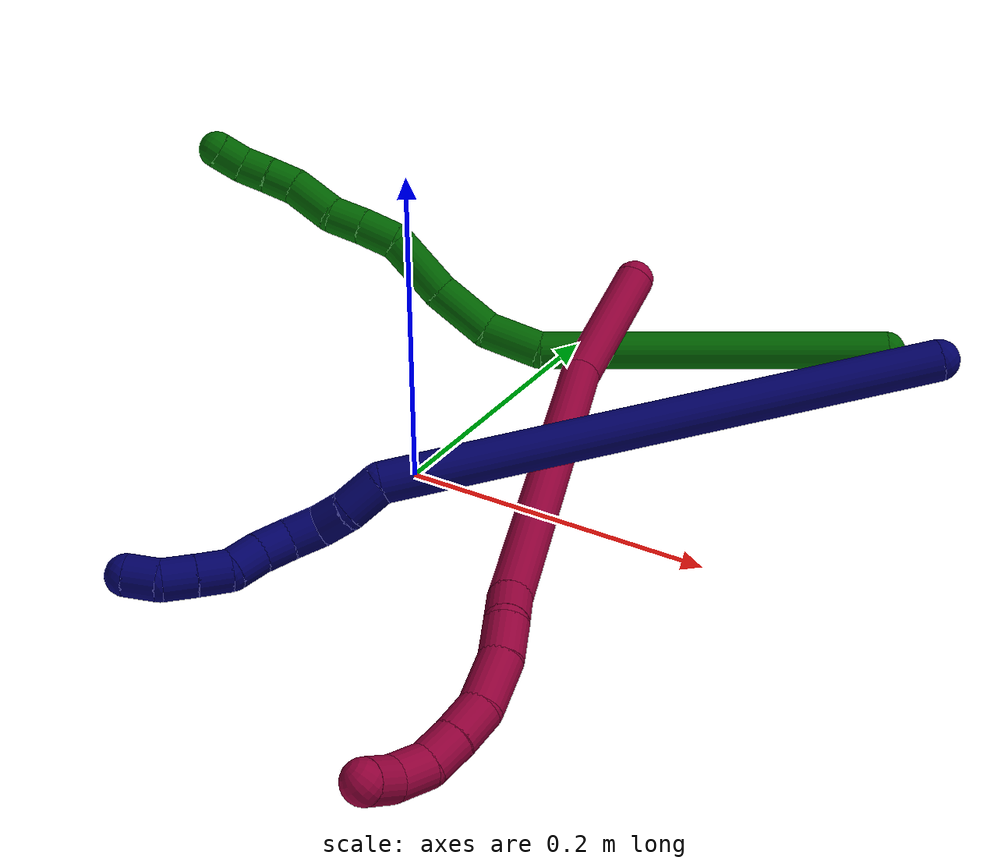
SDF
<sdf version="1.7">
 <world name="default">
  <model name="photoneo_s_sensor">
   <static>1</static>
   <pose>0 0 2 1.57079 1.57079 3.14159</pose>
   <link name="link">
    <inertial><mass>0.1</mass></inertial>
    <sensor name="sensor" type="depth">
     <update_rate>30</update_rate>
     <camera>
      <horizontal_fov>1.22</horizontal_fov>
      <image><width>1920</width><height>1200</height><format>B8G8R8</format></image>
      <clip><near>0.1</near><far>4</far></clip>
      <depth_camera><output>points</output></depth_camera>
     </camera>
     <plugin name="camera_plugin" filename="libgazebo_ros_depth_camera.so">
      <baseline>0.2</baseline>
      <alwaysOn>1</alwaysOn>
      <updateRate>0.0</updateRate>
      <cameraName>camera_ir</cameraName>
      <imageTopicName>/camera/color/image_raw</imageTopicName>
      <cameraInfoTopicName>/camera/color/camera_info</cameraInfoTopicName>
      <depthImageTopicName>/camera/depth/image_raw</depthImageTopicName>
      <depthImageCameraInfoTopicName>/camera/depth/camera_info</depthImageCameraInfoTopicName>
      <pointCloudTopicName>/camera/depth/points</pointCloudTopicName>
      <frameName>fr_optical</frameName>
      <pointCloudCutoff>0.1</pointCloudCutoff>
      <pointCloudCutoffMax>2.0</pointCloudCutoffMax>
      <distortionK1>0</distortionK1>
      <distortionK2>0</distortionK2>
      <distortionK3>0</distortionK3>
      <distortionT1>0</distortionT1>
      <distortionT2>0</distortionT2>
      <CxPrime>0</CxPrime>
      <Cx>0</Cx>
      <Cy>0</Cy>
      <focalLength>0</focalLength>
      <hackBaseline>0</hackBaseline>
     </plugin>
    </sensor>
   </link>
  </model>
  <model name="bin">
   <static>1</static>
   <link name="bottom">
    <collision name="collision-bottom">
     <pose>0 0 -0.01 0 -0 0</pose>
     <geometry><box><size>0.8 0.6 0.02</size></box></geometry>
     <surface>
      <friction><ode><mu>100</mu><mu2>100</mu2></ode></friction>
      <contact><collide_bitmask>65535</collide_bitmask></contact>
     </surface>
    </collision>
   </link>
   <link name="west_wall">
    <collision name="collision-west_wall">
     <pose>-0.41 0 0.1 0 -0 0</pose>
     <geometry><box><size>0.02 0.6 0.2</size></box></geometry>
     <surface>
      <friction><ode><mu>100</mu><mu2>100</mu2></ode></friction>
      <contact><collide_bitmask>65535</collide_bitmask></contact>
     </surface>
    </collision>
   </link>
   <link name="east_wall">
    <collision name="collision-east_wall">
     <pose>0.41 0 0.1 0 -0 0</pose>
     <geometry><box><size>0.02 0.6 0.2</size></box></geometry>
     <surface>
      <friction><ode><mu>100</mu><mu2>100</mu2></ode></friction>
      <contact><collide_bitmask>65535</collide_bitmask></contact>
     </surface>
    </collision>
   </link>
   <link name="south_wall">
    <collision name="collision-south_wall">
     <pose>0 -0.31 0.1 0 -0 0</pose>
     <geometry><box><size>0.8 0.02 0.2</size></box></geometry>
     <surface>
      <friction><ode><mu>100</mu><mu2>100</mu2></ode></friction>
      <contact><collide_bitmask>65535</collide_bitmask></contact>
     </surface>
    </collision>
   </link>
   <link name="north_wall">
    <collision name="collision-north_wall">
     <pose>0 0.31 0.1 0 -0 0</pose>
     <geometry><box><size>0.8 0.02 0.2</size></box></geometry>
     <surface>
      <friction><ode><mu>100</mu><mu2>100</mu2></ode></friction>
      <contact><collide_bitmask>65535</collide_bitmask></contact>
     </surface>
    </collision>
   </link>
  </model>
  <model name="6">
   <static>0</static>
   <link name="6">
    <collision name="collision-cylinder-e_1_1_4">
     <pose>-0.074162 -0.061616 0.065487 0.754948 -0.68967 -0.282923</pose>
     <geometry><cylinder><radius>0.0125</radius><length>0.233109</length></cylinder></geometry>
     <surface>
      <friction><ode><mu>1.16</mu><mu2>1.16</mu2><slip1>0</slip1><slip2>0</slip2></ode></friction>
      <contact><ode><kp>1e+06</kp><kd>1</kd><max_vel>0</max_vel><min_depth>0.001</min_depth></ode></contact>
     </surface>
    </collision>
    <visual name="visual-cylinder-e_1_1_4">
     <pose>-0.074162 -0.061616 0.065487 0.754948 -0.68967 -0.282923</pose>
     <geometry><cylinder><radius>0.0125</radius><length>0.233109</length></cylinder></geometry>
     <material><ambient>0 0.392157 0.003922 1</ambient></material>
    </visual>
    <collision name="collision-cylinder-e_2_4_5">
     <pose>-0.161508 -0.137042 0.135008 1.28662 -0.741779 -0.567372</pose>
     <geometry><cylinder><radius>0.0125</radius><length>0.039031</length></cylinder></geometry>
     <surface>
      <friction><ode><mu>1.16</mu><mu2>1.16</mu2><slip1>0</slip1><slip2>0</slip2></ode></friction>
      <contact><ode><kp>1e+06</kp><kd>1</kd><max_vel>0</max_vel><min_depth>0.001</min_depth></ode></contact>
     </surface>
    </collision>
    <visual name="visual-cylinder-e_2_4_5">
     <pose>-0.161508 -0.137042 0.135008 1.28662 -0.741779 -0.567372</pose>
     <geometry><cylinder><radius>0.0125</radius><length>0.039031</length></cylinder></geometry>
     <material><ambient>0 0.392157 0.003922 1</ambient></material>
    </visual>
    <collision name="collision-cylinder-e_3_5_6">
     <pose>-0.190582 -0.164071 0.136982 1.72541 -0.871007 -0.995582</pose>
     <geometry><cylinder><radius>0.0125</radius><length>0.04154</length></cylinder></geometry>
     <surface>
      <friction><ode><mu>1.16</mu><mu2>1.16</mu2><slip1>0</slip1><slip2>0</slip2></ode></friction>
      <contact><ode><kp>1e+06</kp><kd>1</kd><max_vel>0</max_vel><min_depth>0.001</min_depth></ode></contact>
     </surface>
    </collision>
    <visual name="visual-cylinder-e_3_5_6">
     <pose>-0.190582 -0.164071 0.136982 1.72541 -0.871007 -0.995582</pose>
     <geometry><cylinder><radius>0.0125</radius><length>0.04154</length></cylinder></geometry>
     <material><ambient>0 0.392157 0.003922 1</ambient></material>
    </visual>
    <collision name="collision-cylinder-e_4_6_7">
     <pose>-0.225333 -0.188216 0.129623 2.02233 -0.998776 -1.43291</pose>
     <geometry><cylinder><radius>0.0125</radius><length>0.044867</length></cylinder></geometry>
     <surface>
      <friction><ode><mu>1.16</mu><mu2>1.16</mu2><slip1>0</slip1><slip2>0</slip2></ode></friction>
      <contact><ode><kp>1e+06</kp><kd>1</kd><max_vel>0</max_vel><min_depth>0.001</min_depth></ode></contact>
     </surface>
    </collision>
    <visual name="visual-cylinder-e_4_6_7">
     <pose>-0.225333 -0.188216 0.129623 2.02233 -0.998776 -1.43291</pose>
     <geometry><cylinder><radius>0.0125</radius><length>0.044867</length></cylinder></geometry>
     <material><ambient>0 0.392157 0.003922 1</ambient></material>
    </visual>
    <collision name="collision-cylinder-e_5_7_8">
     <pose>-0.253386 -0.207909 0.126266 1.35279 -0.797038 -0.65186</pose>
     <geometry><cylinder><radius>0.0125</radius><length>0.025699</length></cylinder></geometry>
     <surface>
      <friction><ode><mu>1.16</mu><mu2>1.16</mu2><slip1>0</slip1><slip2>0</slip2></ode></friction>
      <contact><ode><kp>1e+06</kp><kd>1</kd><max_vel>0</max_vel><min_depth>0.001</min_depth></ode></contact>
     </surface>
    </collision>
    <visual name="visual-cylinder-e_5_7_8">
     <pose>-0.253386 -0.207909 0.126266 1.35279 -0.797038 -0.65186</pose>
     <geometry><cylinder><radius>0.0125</radius><length>0.025699</length></cylinder></geometry>
     <material><ambient>0 0.392157 0.003922 1</ambient></material>
    </visual>
    <collision name="collision-cylinder-e_6_8_9">
     <pose>-0.270631 -0.224053 0.130586 1.2589 -0.804595 -0.600997</pose>
     <geometry><cylinder><radius>0.0125</radius><length>0.022356</length></cylinder></geometry>
     <surface>
      <friction><ode><mu>1.16</mu><mu2>1.16</mu2><slip1>0</slip1><slip2>0</slip2></ode></friction>
      <contact><ode><kp>1e+06</kp><kd>1</kd><max_vel>0</max_vel><min_depth>0.001</min_depth></ode></contact>
     </surface>
    </collision>
    <visual name="visual-cylinder-e_6_8_9">
     <pose>-0.270631 -0.224053 0.130586 1.2589 -0.804595 -0.600997</pose>
     <geometry><cylinder><radius>0.0125</radius><length>0.022356</length></cylinder></geometry>
     <material><ambient>0 0.392157 0.003922 1</ambient></material>
    </visual>
    <collision name="collision-cylinder-e_7_9_10">
     <pose>-0.289651 -0.243927 0.131627 1.67741 -0.717365 -0.790427</pose>
     <geometry><cylinder><radius>0.0125</radius><length>0.033359</length></cylinder></geometry>
     <surface>
      <friction><ode><mu>1.16</mu><mu2>1.16</mu2><slip1>0</slip1><slip2>0</slip2></ode></friction>
      <contact><ode><kp>1e+06</kp><kd>1</kd><max_vel>0</max_vel><min_depth>0.001</min_depth></ode></contact>
     </surface>
    </collision>
    <visual name="visual-cylinder-e_7_9_10">
     <pose>-0.289651 -0.243927 0.131627 1.67741 -0.717365 -0.790427</pose>
     <geometry><cylinder><radius>0.0125</radius><length>0.033359</length></cylinder></geometry>
     <material><ambient>0 0.392157 0.003922 1</ambient></material>
    </visual>
    <collision name="collision-cylinder-e_8_10_11">
     <pose>-0.30827 -0.262609 0.132175 1.27487 -0.869346 -0.662348</pose>
     <geometry><cylinder><radius>0.0125</radius><length>0.020038</length></cylinder></geometry>
     <surface>
      <friction><ode><mu>1.16</mu><mu2>1.16</mu2><slip1>0</slip1><slip2>0</slip2></ode></friction>
      <contact><ode><kp>1e+06</kp><kd>1</kd><max_vel>0</max_vel><min_depth>0.001</min_depth></ode></contact>
     </surface>
    </collision>
    <visual name="visual-cylinder-e_8_10_11">
     <pose>-0.30827 -0.262609 0.132175 1.27487 -0.869346 -0.662348</pose>
     <geometry><cylinder><radius>0.0125</radius><length>0.020038</length></cylinder></geometry>
     <material><ambient>0 0.392157 0.003922 1</ambient></material>
    </visual>
    <collision name="collision-cylinder-e_9_11_12">
     <pose>-0.323133 -0.275449 0.135991 1.2886 -0.805237 -0.619303</pose>
     <geometry><cylinder><radius>0.0125</radius><length>0.02</length></cylinder></geometry>
     <surface>
      <friction><ode><mu>1.16</mu><mu2>1.16</mu2><slip1>0</slip1><slip2>0</slip2></ode></friction>
      <contact><ode><kp>1e+06</kp><kd>1</kd><max_vel>0</max_vel><min_depth>0.001</min_depth></ode></contact>
     </surface>
    </collision>
    <visual name="visual-cylinder-e_9_11_12">
     <pose>-0.323133 -0.275449 0.135991 1.2886 -0.805237 -0.619303</pose>
     <geometry><cylinder><radius>0.0125</radius><length>0.02</length></cylinder></geometry>
     <material><ambient>0 0.392157 0.003922 1</ambient></material>
    </visual>
    <collision name="collision-cylinder-e_10_12_2">
     <pose>-0.339895 -0.284857 0.139007 1.19466 -1.27034 -0.92948</pose>
     <geometry><cylinder><radius>0.0125</radius><length>0.02</length></cylinder></geometry>
     <surface>
      <friction><ode><mu>1.16</mu><mu2>1.16</mu2><slip1>0</slip1><slip2>0</slip2></ode></friction>
      <contact><ode><kp>1e+06</kp><kd>1</kd><max_vel>0</max_vel><min_depth>0.001</min_depth></ode></contact>
     </surface>
    </collision>
    <visual name="visual-cylinder-e_10_12_2">
     <pose>-0.339895 -0.284857 0.139007 1.19466 -1.27034 -0.92948</pose>
     <geometry><cylinder><radius>0.0125</radius><length>0.02</length></cylinder></geometry>
     <material><ambient>0 0.392157 0.003922 1</ambient></material>
    </visual>
    <collision name="collision-sphere-2">
     <pose>-0.349447 -0.28761 0.140095 0 -0 0</pose>
     <geometry><sphere><radius>0.0125</radius></sphere></geometry>
     <surface>
      <friction><ode><mu>1.16</mu><mu2>1.16</mu2><slip1>0</slip1><slip2>0</slip2></ode></friction>
      <contact><ode><kp>1e+06</kp><kd>1</kd><max_vel>0</max_vel><min_depth>0.001</min_depth></ode></contact>
     </surface>
    </collision>
    <visual name="visual-sphere-2">
     <pose>-0.349447 -0.28761 0.140095 0 -0 0</pose>
     <geometry><sphere><radius>0.0125</radius></sphere></geometry>
     <material><ambient>0 0.392157 0.003922 1</ambient></material>
    </visual>
    <collision name="collision-sphere-12">
     <pose>-0.330343 -0.282105 0.13792 0 -0 0</pose>
     <geometry><sphere><radius>0.0125</radius></sphere></geometry>
     <surface>
      <friction><ode><mu>1.16</mu><mu2>1.16</mu2><slip1>0</slip1><slip2>0</slip2></ode></friction>
      <contact><ode><kp>1e+06</kp><kd>1</kd><max_vel>0</max_vel><min_depth>0.001</min_depth></ode></contact>
     </surface>
    </collision>
    <visual name="visual-sphere-12">
     <pose>-0.330343 -0.282105 0.13792 0 -0 0</pose>
     <geometry><sphere><radius>0.0125</radius></sphere></geometry>
     <material><ambient>0 0.392157 0.003922 1</ambient></material>
    </visual>
    <collision name="collision-sphere-11">
     <pose>-0.315923 -0.268794 0.134061 0 -0 0</pose>
     <geometry><sphere><radius>0.0125</radius></sphere></geometry>
     <surface>
      <friction><ode><mu>1.16</mu><mu2>1.16</mu2><slip1>0</slip1><slip2>0</slip2></ode></friction>
      <contact><ode><kp>1e+06</kp><kd>1</kd><max_vel>0</max_vel><min_depth>0.001</min_depth></ode></contact>
     </surface>
    </collision>
    <visual name="visual-sphere-11">
     <pose>-0.315923 -0.268794 0.134061 0 -0 0</pose>
     <geometry><sphere><radius>0.0125</radius></sphere></geometry>
     <material><ambient>0 0.392157 0.003922 1</ambient></material>
    </visual>
    <collision name="collision-sphere-10">
     <pose>-0.300616 -0.256425 0.13029 0 -0 0</pose>
     <geometry><sphere><radius>0.0125</radius></sphere></geometry>
     <surface>
      <friction><ode><mu>1.16</mu><mu2>1.16</mu2><slip1>0</slip1><slip2>0</slip2></ode></friction>
      <contact><ode><kp>1e+06</kp><kd>1</kd><max_vel>0</max_vel><min_depth>0.001</min_depth></ode></contact>
     </surface>
    </collision>
    <visual name="visual-sphere-10">
     <pose>-0.300616 -0.256425 0.13029 0 -0 0</pose>
     <geometry><sphere><radius>0.0125</radius></sphere></geometry>
     <material><ambient>0 0.392157 0.003922 1</ambient></material>
    </visual>
    <collision name="collision-sphere-9">
     <pose>-0.278686 -0.23143 0.132965 0 -0 0</pose>
     <geometry><sphere><radius>0.0125</radius></sphere></geometry>
     <surface>
      <friction><ode><mu>1.16</mu><mu2>1.16</mu2><slip1>0</slip1><slip2>0</slip2></ode></friction>
      <contact><ode><kp>1e+06</kp><kd>1</kd><max_vel>0</max_vel><min_depth>0.001</min_depth></ode></contact>
     </surface>
    </collision>
    <visual name="visual-sphere-9">
     <pose>-0.278686 -0.23143 0.132965 0 -0 0</pose>
     <geometry><sphere><radius>0.0125</radius></sphere></geometry>
     <material><ambient>0 0.392157 0.003922 1</ambient></material>
    </visual>
    <collision name="collision-sphere-4">
     <pose>-0.148323 -0.123231 0.130974 0 -0 0</pose>
     <geometry><sphere><radius>0.0125</radius></sphere></geometry>
     <surface>
      <friction><ode><mu>1.16</mu><mu2>1.16</mu2><slip1>0</slip1><slip2>0</slip2></ode></friction>
      <contact><ode><kp>1e+06</kp><kd>1</kd><max_vel>0</max_vel><min_depth>0.001</min_depth></ode></contact>
     </surface>
    </collision>
    <visual name="visual-sphere-4">
     <pose>-0.148323 -0.123231 0.130974 0 -0 0</pose>
     <geometry><sphere><radius>0.0125</radius></sphere></geometry>
     <material><ambient>0 0.392157 0.003922 1</ambient></material>
    </visual>
    <collision name="collision-sphere-1">
     <geometry><sphere><radius>0.0125</radius></sphere></geometry>
     <surface>
      <friction><ode><mu>1.16</mu><mu2>1.16</mu2><slip1>0</slip1><slip2>0</slip2></ode></friction>
      <contact><ode><kp>1e+06</kp><kd>1</kd><max_vel>0</max_vel><min_depth>0.001</min_depth></ode></contact>
     </surface>
    </collision>
    <visual name="visual-sphere-1">
     <geometry><sphere><radius>0.0125</radius></sphere></geometry>
     <material><ambient>0 0.392157 0.003922 1</ambient></material>
    </visual>
    <collision name="collision-sphere-8">
     <pose>-0.262577 -0.216677 0.128208 0 -0 0</pose>
     <geometry><sphere><radius>0.0125</radius></sphere></geometry>
     <surface>
      <friction><ode><mu>1.16</mu><mu2>1.16</mu2><slip1>0</slip1><slip2>0</slip2></ode></friction>
      <contact><ode><kp>1e+06</kp><kd>1</kd><max_vel>0</max_vel><min_depth>0.001</min_depth></ode></contact>
     </surface>
    </collision>
    <visual name="visual-sphere-8">
     <pose>-0.262577 -0.216677 0.128208 0 -0 0</pose>
     <geometry><sphere><radius>0.0125</radius></sphere></geometry>
     <material><ambient>0 0.392157 0.003922 1</ambient></material>
    </visual>
    <collision name="collision-sphere-5">
     <pose>-0.174693 -0.150853 0.139042 0 -0 0</pose>
     <geometry><sphere><radius>0.0125</radius></sphere></geometry>
     <surface>
      <friction><ode><mu>1.16</mu><mu2>1.16</mu2><slip1>0</slip1><slip2>0</slip2></ode></friction>
      <contact><ode><kp>1e+06</kp><kd>1</kd><max_vel>0</max_vel><min_depth>0.001</min_depth></ode></contact>
     </surface>
    </collision>
    <visual name="visual-sphere-5">
     <pose>-0.174693 -0.150853 0.139042 0 -0 0</pose>
     <geometry><sphere><radius>0.0125</radius></sphere></geometry>
     <material><ambient>0 0.392157 0.003922 1</ambient></material>
    </visual>
    <collision name="collision-sphere-6">
     <pose>-0.20647 -0.177289 0.134922 0 -0 0</pose>
     <geometry><sphere><radius>0.0125</radius></sphere></geometry>
     <surface>
      <friction><ode><mu>1.16</mu><mu2>1.16</mu2><slip1>0</slip1><slip2>0</slip2></ode></friction>
      <contact><ode><kp>1e+06</kp><kd>1</kd><max_vel>0</max_vel><min_depth>0.001</min_depth></ode></contact>
     </surface>
    </collision>
    <visual name="visual-sphere-6">
     <pose>-0.20647 -0.177289 0.134922 0 -0 0</pose>
     <geometry><sphere><radius>0.0125</radius></sphere></geometry>
     <material><ambient>0 0.392157 0.003922 1</ambient></material>
    </visual>
    <collision name="collision-sphere-7">
     <pose>-0.244195 -0.199142 0.124324 0 -0 0</pose>
     <geometry><sphere><radius>0.0125</radius></sphere></geometry>
     <surface>
      <friction><ode><mu>1.16</mu><mu2>1.16</mu2><slip1>0</slip1><slip2>0</slip2></ode></friction>
      <contact><ode><kp>1e+06</kp><kd>1</kd><max_vel>0</max_vel><min_depth>0.001</min_depth></ode></contact>
     </surface>
    </collision>
    <visual name="visual-sphere-7">
     <pose>-0.244195 -0.199142 0.124324 0 -0 0</pose>
     <geometry><sphere><radius>0.0125</radius></sphere></geometry>
     <material><ambient>0 0.392157 0.003922 1</ambient></material>
    </visual>
    <inertial>
     <pose>-0.166561 -0.13986 0.10149 0 -0 0</pose>
     <mass>0.5</mass>
     <inertia>
      <ixx>0.000529</ixx>
      <ixy>0</ixy>
      <ixz>0</ixz>
      <iyy>0.000627</iyy>
      <iyz>0</iyz>
      <izz>0.001301</izz>
     </inertia>
    </inertial>
   </link>
   <pose>0.194621 0.279767 0.012431 2.86132 0.82345 0.902166</pose>
  </model>
  <model name="7">
   <static>0</static>
   <link name="7">
    <collision name="collision-cylinder-e_1_1_4">
     <pose>0.053676 -0.086699 -0.132931 2.56366 0.326134 1.01095</pose>
     <geometry><cylinder><radius>0.0125</radius><length>0.335074</length></cylinder></geometry>
     <surface>
      <friction><ode><mu>1.16</mu><mu2>1.16</mu2><slip1>0</slip1><slip2>0</slip2></ode></friction>
      <contact><ode><kp>1e+06</kp><kd>1</kd><max_vel>0</max_vel><min_depth>0.001</min_depth></ode></contact>
     </surface>
    </collision>
    <visual name="visual-cylinder-e_1_1_4">
     <pose>0.053676 -0.086699 -0.132931 2.56366 0.326134 1.01095</pose>
     <geometry><cylinder><radius>0.0125</radius><length>0.335074</length></cylinder></geometry>
     <material><ambient>0.003922 0 0.403922 1</ambient></material>
    </visual>
    <collision name="collision-cylinder-e_2_4_5">
     <pose>0.105117 -0.180241 -0.275802 2.53873 -0.183198 -0.574547</pose>
     <geometry><cylinder><radius>0.0125</radius><length>0.024544</length></cylinder></geometry>
     <surface>
      <friction><ode><mu>1.16</mu><mu2>1.16</mu2><slip1>0</slip1><slip2>0</slip2></ode></friction>
      <contact><ode><kp>1e+06</kp><kd>1</kd><max_vel>0</max_vel><min_depth>0.001</min_depth></ode></contact>
     </surface>
    </collision>
    <visual name="visual-cylinder-e_2_4_5">
     <pose>0.105117 -0.180241 -0.275802 2.53873 -0.183198 -0.574547</pose>
     <geometry><cylinder><radius>0.0125</radius><length>0.024544</length></cylinder></geometry>
     <material><ambient>0.003922 0 0.403922 1</ambient></material>
    </visual>
    <collision name="collision-cylinder-e_3_5_6">
     <pose>0.101892 -0.195175 -0.291788 2.21243 -0.097587 -0.19426</pose>
     <geometry><cylinder><radius>0.0125</radius><length>0.020301</length></cylinder></geometry>
     <surface>
      <friction><ode><mu>1.16</mu><mu2>1.16</mu2><slip1>0</slip1><slip2>0</slip2></ode></friction>
      <contact><ode><kp>1e+06</kp><kd>1</kd><max_vel>0</max_vel><min_depth>0.001</min_depth></ode></contact>
     </surface>
    </collision>
    <visual name="visual-cylinder-e_3_5_6">
     <pose>0.101892 -0.195175 -0.291788 2.21243 -0.097587 -0.19426</pose>
     <geometry><cylinder><radius>0.0125</radius><length>0.020301</length></cylinder></geometry>
     <material><ambient>0.003922 0 0.403922 1</ambient></material>
    </visual>
    <collision name="collision-cylinder-e_4_6_7">
     <pose>0.102435 -0.208071 -0.306502 2.6356 0.153349 0.577688</pose>
     <geometry><cylinder><radius>0.0125</radius><length>0.020056</length></cylinder></geometry>
     <surface>
      <friction><ode><mu>1.16</mu><mu2>1.16</mu2><slip1>0</slip1><slip2>0</slip2></ode></friction>
      <contact><ode><kp>1e+06</kp><kd>1</kd><max_vel>0</max_vel><min_depth>0.001</min_depth></ode></contact>
     </surface>
    </collision>
    <visual name="visual-cylinder-e_4_6_7">
     <pose>0.102435 -0.208071 -0.306502 2.6356 0.153349 0.577688</pose>
     <geometry><cylinder><radius>0.0125</radius><length>0.020056</length></cylinder></geometry>
     <material><ambient>0.003922 0 0.403922 1</ambient></material>
    </visual>
    <collision name="collision-cylinder-e_5_7_8">
     <pose>0.10609 -0.214528 -0.324807 2.97167 0.213888 1.80027</pose>
     <geometry><cylinder><radius>0.0125</radius><length>0.02001</length></cylinder></geometry>
     <surface>
      <friction><ode><mu>1.16</mu><mu2>1.16</mu2><slip1>0</slip1><slip2>0</slip2></ode></friction>
      <contact><ode><kp>1e+06</kp><kd>1</kd><max_vel>0</max_vel><min_depth>0.001</min_depth></ode></contact>
     </surface>
    </collision>
    <visual name="visual-cylinder-e_5_7_8">
     <pose>0.10609 -0.214528 -0.324807 2.97167 0.213888 1.80027</pose>
     <geometry><cylinder><radius>0.0125</radius><length>0.02001</length></cylinder></geometry>
     <material><ambient>0.003922 0 0.403922 1</ambient></material>
    </visual>
    <collision name="collision-cylinder-e_6_8_9">
     <pose>0.109513 -0.216226 -0.344365 3.1371 0.1302 3.07269</pose>
     <geometry><cylinder><radius>0.0125</radius><length>0.020014</length></cylinder></geometry>
     <surface>
      <friction><ode><mu>1.16</mu><mu2>1.16</mu2><slip1>0</slip1><slip2>0</slip2></ode></friction>
      <contact><ode><kp>1e+06</kp><kd>1</kd><max_vel>0</max_vel><min_depth>0.001</min_depth></ode></contact>
     </surface>
    </collision>
    <visual name="visual-cylinder-e_6_8_9">
     <pose>0.109513 -0.216226 -0.344365 3.1371 0.1302 3.07269</pose>
     <geometry><cylinder><radius>0.0125</radius><length>0.020014</length></cylinder></geometry>
     <material><ambient>0.003922 0 0.403922 1</ambient></material>
    </visual>
    <collision name="collision-cylinder-e_7_9_10">
     <pose>0.115134 -0.219799 -0.362586 2.73956 0.446928 1.6797</pose>
     <geometry><cylinder><radius>0.0125</radius><length>0.02</length></cylinder></geometry>
     <surface>
      <friction><ode><mu>1.16</mu><mu2>1.16</mu2><slip1>0</slip1><slip2>0</slip2></ode></friction>
      <contact><ode><kp>1e+06</kp><kd>1</kd><max_vel>0</max_vel><min_depth>0.001</min_depth></ode></contact>
     </surface>
    </collision>
    <visual name="visual-cylinder-e_7_9_10">
     <pose>0.115134 -0.219799 -0.362586 2.73956 0.446928 1.6797</pose>
     <geometry><cylinder><radius>0.0125</radius><length>0.02</length></cylinder></geometry>
     <material><ambient>0.003922 0 0.403922 1</ambient></material>
    </visual>
    <collision name="collision-cylinder-e_8_10_11">
     <pose>0.123884 -0.227105 -0.379017 2.70673 0.45863 1.6258</pose>
     <geometry><cylinder><radius>0.0125</radius><length>0.020001</length></cylinder></geometry>
     <surface>
      <friction><ode><mu>1.16</mu><mu2>1.16</mu2><slip1>0</slip1><slip2>0</slip2></ode></friction>
      <contact><ode><kp>1e+06</kp><kd>1</kd><max_vel>0</max_vel><min_depth>0.001</min_depth></ode></contact>
     </surface>
    </collision>
    <visual name="visual-cylinder-e_8_10_11">
     <pose>0.123884 -0.227105 -0.379017 2.70673 0.45863 1.6258</pose>
     <geometry><cylinder><radius>0.0125</radius><length>0.020001</length></cylinder></geometry>
     <material><ambient>0.003922 0 0.403922 1</ambient></material>
    </visual>
    <collision name="collision-cylinder-e_9_11_2">
     <pose>0.133887 -0.237501 -0.392162 2.21901 0.591412 1.09968</pose>
     <geometry><cylinder><radius>0.0125</radius><length>0.020001</length></cylinder></geometry>
     <surface>
      <friction><ode><mu>1.16</mu><mu2>1.16</mu2><slip1>0</slip1><slip2>0</slip2></ode></friction>
      <contact><ode><kp>1e+06</kp><kd>1</kd><max_vel>0</max_vel><min_depth>0.001</min_depth></ode></contact>
     </surface>
    </collision>
    <visual name="visual-cylinder-e_9_11_2">
     <pose>0.133887 -0.237501 -0.392162 2.21901 0.591412 1.09968</pose>
     <geometry><cylinder><radius>0.0125</radius><length>0.020001</length></cylinder></geometry>
     <material><ambient>0.003922 0 0.403922 1</ambient></material>
    </visual>
    <collision name="collision-sphere-2">
     <pose>0.139462 -0.244119 -0.397175 0 -0 0</pose>
     <geometry><sphere><radius>0.0125</radius></sphere></geometry>
     <surface>
      <friction><ode><mu>1.16</mu><mu2>1.16</mu2><slip1>0</slip1><slip2>0</slip2></ode></friction>
      <contact><ode><kp>1e+06</kp><kd>1</kd><max_vel>0</max_vel><min_depth>0.001</min_depth></ode></contact>
     </surface>
    </collision>
    <visual name="visual-sphere-2">
     <pose>0.139462 -0.244119 -0.397175 0 -0 0</pose>
     <geometry><sphere><radius>0.0125</radius></sphere></geometry>
     <material><ambient>0.003922 0 0.403922 1</ambient></material>
    </visual>
    <collision name="collision-sphere-11">
     <pose>0.128311 -0.230883 -0.38715 0 -0 0</pose>
     <geometry><sphere><radius>0.0125</radius></sphere></geometry>
     <surface>
      <friction><ode><mu>1.16</mu><mu2>1.16</mu2><slip1>0</slip1><slip2>0</slip2></ode></friction>
      <contact><ode><kp>1e+06</kp><kd>1</kd><max_vel>0</max_vel><min_depth>0.001</min_depth></ode></contact>
     </surface>
    </collision>
    <visual name="visual-sphere-11">
     <pose>0.128311 -0.230883 -0.38715 0 -0 0</pose>
     <geometry><sphere><radius>0.0125</radius></sphere></geometry>
     <material><ambient>0.003922 0 0.403922 1</ambient></material>
    </visual>
    <collision name="collision-sphere-10">
     <pose>0.119456 -0.223328 -0.370885 0 -0 0</pose>
     <geometry><sphere><radius>0.0125</radius></sphere></geometry>
     <surface>
      <friction><ode><mu>1.16</mu><mu2>1.16</mu2><slip1>0</slip1><slip2>0</slip2></ode></friction>
      <contact><ode><kp>1e+06</kp><kd>1</kd><max_vel>0</max_vel><min_depth>0.001</min_depth></ode></contact>
     </surface>
    </collision>
    <visual name="visual-sphere-10">
     <pose>0.119456 -0.223328 -0.370885 0 -0 0</pose>
     <geometry><sphere><radius>0.0125</radius></sphere></geometry>
     <material><ambient>0.003922 0 0.403922 1</ambient></material>
    </visual>
    <collision name="collision-sphere-9">
     <pose>0.110812 -0.216271 -0.354287 0 -0 0</pose>
     <geometry><sphere><radius>0.0125</radius></sphere></geometry>
     <surface>
      <friction><ode><mu>1.16</mu><mu2>1.16</mu2><slip1>0</slip1><slip2>0</slip2></ode></friction>
      <contact><ode><kp>1e+06</kp><kd>1</kd><max_vel>0</max_vel><min_depth>0.001</min_depth></ode></contact>
     </surface>
    </collision>
    <visual name="visual-sphere-9">
     <pose>0.110812 -0.216271 -0.354287 0 -0 0</pose>
     <geometry><sphere><radius>0.0125</radius></sphere></geometry>
     <material><ambient>0.003922 0 0.403922 1</ambient></material>
    </visual>
    <collision name="collision-sphere-4">
     <pose>0.107352 -0.173399 -0.265863 0 -0 0</pose>
     <geometry><sphere><radius>0.0125</radius></sphere></geometry>
     <surface>
      <friction><ode><mu>1.16</mu><mu2>1.16</mu2><slip1>0</slip1><slip2>0</slip2></ode></friction>
      <contact><ode><kp>1e+06</kp><kd>1</kd><max_vel>0</max_vel><min_depth>0.001</min_depth></ode></contact>
     </surface>
    </collision>
    <visual name="visual-sphere-4">
     <pose>0.107352 -0.173399 -0.265863 0 -0 0</pose>
     <geometry><sphere><radius>0.0125</radius></sphere></geometry>
     <material><ambient>0.003922 0 0.403922 1</ambient></material>
    </visual>
    <collision name="collision-sphere-1">
     <geometry><sphere><radius>0.0125</radius></sphere></geometry>
     <surface>
      <friction><ode><mu>1.16</mu><mu2>1.16</mu2><slip1>0</slip1><slip2>0</slip2></ode></friction>
      <contact><ode><kp>1e+06</kp><kd>1</kd><max_vel>0</max_vel><min_depth>0.001</min_depth></ode></contact>
     </surface>
    </collision>
    <visual name="visual-sphere-1">
     <geometry><sphere><radius>0.0125</radius></sphere></geometry>
     <material><ambient>0.003922 0 0.403922 1</ambient></material>
    </visual>
    <collision name="collision-sphere-8">
     <pose>0.108214 -0.216181 -0.334443 0 -0 0</pose>
     <geometry><sphere><radius>0.0125</radius></sphere></geometry>
     <surface>
      <friction><ode><mu>1.16</mu><mu2>1.16</mu2><slip1>0</slip1><slip2>0</slip2></ode></friction>
      <contact><ode><kp>1e+06</kp><kd>1</kd><max_vel>0</max_vel><min_depth>0.001</min_depth></ode></contact>
     </surface>
    </collision>
    <visual name="visual-sphere-8">
     <pose>0.108214 -0.216181 -0.334443 0 -0 0</pose>
     <geometry><sphere><radius>0.0125</radius></sphere></geometry>
     <material><ambient>0.003922 0 0.403922 1</ambient></material>
    </visual>
    <collision name="collision-sphere-5">
     <pose>0.102881 -0.187082 -0.285741 0 -0 0</pose>
     <geometry><sphere><radius>0.0125</radius></sphere></geometry>
     <surface>
      <friction><ode><mu>1.16</mu><mu2>1.16</mu2><slip1>0</slip1><slip2>0</slip2></ode></friction>
      <contact><ode><kp>1e+06</kp><kd>1</kd><max_vel>0</max_vel><min_depth>0.001</min_depth></ode></contact>
     </surface>
    </collision>
    <visual name="visual-sphere-5">
     <pose>0.102881 -0.187082 -0.285741 0 -0 0</pose>
     <geometry><sphere><radius>0.0125</radius></sphere></geometry>
     <material><ambient>0.003922 0 0.403922 1</ambient></material>
    </visual>
    <collision name="collision-sphere-6">
     <pose>0.100903 -0.203268 -0.297834 0 -0 0</pose>
     <geometry><sphere><radius>0.0125</radius></sphere></geometry>
     <surface>
      <friction><ode><mu>1.16</mu><mu2>1.16</mu2><slip1>0</slip1><slip2>0</slip2></ode></friction>
      <contact><ode><kp>1e+06</kp><kd>1</kd><max_vel>0</max_vel><min_depth>0.001</min_depth></ode></contact>
     </surface>
    </collision>
    <visual name="visual-sphere-6">
     <pose>0.100903 -0.203268 -0.297834 0 -0 0</pose>
     <geometry><sphere><radius>0.0125</radius></sphere></geometry>
     <material><ambient>0.003922 0 0.403922 1</ambient></material>
    </visual>
    <collision name="collision-sphere-7">
     <pose>0.103967 -0.212875 -0.315171 0 -0 0</pose>
     <geometry><sphere><radius>0.0125</radius></sphere></geometry>
     <surface>
      <friction><ode><mu>1.16</mu><mu2>1.16</mu2><slip1>0</slip1><slip2>0</slip2></ode></friction>
      <contact><ode><kp>1e+06</kp><kd>1</kd><max_vel>0</max_vel><min_depth>0.001</min_depth></ode></contact>
     </surface>
    </collision>
    <visual name="visual-sphere-7">
     <pose>0.103967 -0.212875 -0.315171 0 -0 0</pose>
     <geometry><sphere><radius>0.0125</radius></sphere></geometry>
     <material><ambient>0.003922 0 0.403922 1</ambient></material>
    </visual>
    <inertial>
     <pose>0.072923 -0.127837 -0.198898 0 -0 0</pose>
     <mass>0.5</mass>
     <inertia>
      <ixx>0.004129</ixx>
      <ixy>0</ixy>
      <ixz>0</ixz>
      <iyy>0.001578</iyy>
      <iyz>0</iyz>
      <izz>0.000593</izz>
     </inertia>
    </inertial>
   </link>
   <pose>0.282799 0.134457 0.097179 1.09738 -1.0371 -2.91604</pose>
  </model>
  <model name="8">
   <static>0</static>
   <link name="8">
    <collision name="collision-cylinder-e_1_1_4">
     <pose>-0.016381 -0.039529 -0.001696 1.61367 -0.39255 -0.409285</pose>
     <geometry><cylinder><radius>0.0125</radius><length>0.085644</length></cylinder></geometry>
     <surface>
      <friction><ode><mu>1.16</mu><mu2>1.16</mu2><slip1>0</slip1><slip2>0</slip2></ode></friction>
      <contact><ode><kp>1e+06</kp><kd>1</kd><max_vel>0</max_vel><min_depth>0.001</min_depth></ode></contact>
     </surface>
    </collision>
    <visual name="visual-cylinder-e_1_1_4">
     <pose>-0.016381 -0.039529 -0.001696 1.61367 -0.39255 -0.409285</pose>
     <geometry><cylinder><radius>0.0125</radius><length>0.085644</length></cylinder></geometry>
     <material><ambient>0.584314 0 0.227451 1</ambient></material>
    </visual>
    <collision name="collision-cylinder-e_2_4_5">
     <pose>-0.021246 -0.204313 0.001982 1.52793 0.091607 0.087767</pose>
     <geometry><cylinder><radius>0.0125</radius><length>0.251797</length></cylinder></geometry>
     <surface>
      <friction><ode><mu>1.16</mu><mu2>1.16</mu2><slip1>0</slip1><slip2>0</slip2></ode></friction>
      <contact><ode><kp>1e+06</kp><kd>1</kd><max_vel>0</max_vel><min_depth>0.001</min_depth></ode></contact>
     </surface>
    </collision>
    <visual name="visual-cylinder-e_2_4_5">
     <pose>-0.021246 -0.204313 0.001982 1.52793 0.091607 0.087767</pose>
     <geometry><cylinder><radius>0.0125</radius><length>0.251797</length></cylinder></geometry>
     <material><ambient>0.584314 0 0.227451 1</ambient></material>
    </visual>
    <collision name="collision-cylinder-e_3_5_6">
     <pose>-0.008084 -0.340079 0.006994 1.60511 0.15515 0.160543</pose>
     <geometry><cylinder><radius>0.0125</radius><length>0.021291</length></cylinder></geometry>
     <surface>
      <friction><ode><mu>1.16</mu><mu2>1.16</mu2><slip1>0</slip1><slip2>0</slip2></ode></friction>
      <contact><ode><kp>1e+06</kp><kd>1</kd><max_vel>0</max_vel><min_depth>0.001</min_depth></ode></contact>
     </surface>
    </collision>
    <visual name="visual-cylinder-e_3_5_6">
     <pose>-0.008084 -0.340079 0.006994 1.60511 0.15515 0.160543</pose>
     <geometry><cylinder><radius>0.0125</radius><length>0.021291</length></cylinder></geometry>
     <material><ambient>0.584314 0 0.227451 1</ambient></material>
    </visual>
    <collision name="collision-cylinder-e_4_6_7">
     <pose>-0.008121 -0.361623 0.003716 1.82931 -0.146414 -0.189931</pose>
     <geometry><cylinder><radius>0.0125</radius><length>0.023069</length></cylinder></geometry>
     <surface>
      <friction><ode><mu>1.16</mu><mu2>1.16</mu2><slip1>0</slip1><slip2>0</slip2></ode></friction>
      <contact><ode><kp>1e+06</kp><kd>1</kd><max_vel>0</max_vel><min_depth>0.001</min_depth></ode></contact>
     </surface>
    </collision>
    <visual name="visual-cylinder-e_4_6_7">
     <pose>-0.008121 -0.361623 0.003716 1.82931 -0.146414 -0.189931</pose>
     <geometry><cylinder><radius>0.0125</radius><length>0.023069</length></cylinder></geometry>
     <material><ambient>0.584314 0 0.227451 1</ambient></material>
    </visual>
    <collision name="collision-cylinder-e_5_7_8">
     <pose>-0.01367 -0.388543 -0.00024 1.63607 -0.238205 -0.254116</pose>
     <geometry><cylinder><radius>0.0125</radius><length>0.03277</length></cylinder></geometry>
     <surface>
      <friction><ode><mu>1.16</mu><mu2>1.16</mu2><slip1>0</slip1><slip2>0</slip2></ode></friction>
      <contact><ode><kp>1e+06</kp><kd>1</kd><max_vel>0</max_vel><min_depth>0.001</min_depth></ode></contact>
     </surface>
    </collision>
    <visual name="visual-cylinder-e_5_7_8">
     <pose>-0.01367 -0.388543 -0.00024 1.63607 -0.238205 -0.254116</pose>
     <geometry><cylinder><radius>0.0125</radius><length>0.03277</length></cylinder></geometry>
     <material><ambient>0.584314 0 0.227451 1</ambient></material>
    </visual>
    <collision name="collision-cylinder-e_6_8_9">
     <pose>-0.0218 -0.414886 0.000741 1.37996 -0.380826 -0.315508</pose>
     <geometry><cylinder><radius>0.0125</radius><length>0.022939</length></cylinder></geometry>
     <surface>
      <friction><ode><mu>1.16</mu><mu2>1.16</mu2><slip1>0</slip1><slip2>0</slip2></ode></friction>
      <contact><ode><kp>1e+06</kp><kd>1</kd><max_vel>0</max_vel><min_depth>0.001</min_depth></ode></contact>
     </surface>
    </collision>
    <visual name="visual-cylinder-e_6_8_9">
     <pose>-0.0218 -0.414886 0.000741 1.37996 -0.380826 -0.315508</pose>
     <geometry><cylinder><radius>0.0125</radius><length>0.022939</length></cylinder></geometry>
     <material><ambient>0.584314 0 0.227451 1</ambient></material>
    </visual>
    <collision name="collision-cylinder-e_7_9_10">
     <pose>-0.030439 -0.434557 0.005308 1.30121 -0.429151 -0.328767</pose>
     <geometry><cylinder><radius>0.0125</radius><length>0.021033</length></cylinder></geometry>
     <surface>
      <friction><ode><mu>1.16</mu><mu2>1.16</mu2><slip1>0</slip1><slip2>0</slip2></ode></friction>
      <contact><ode><kp>1e+06</kp><kd>1</kd><max_vel>0</max_vel><min_depth>0.001</min_depth></ode></contact>
     </surface>
    </collision>
    <visual name="visual-cylinder-e_7_9_10">
     <pose>-0.030439 -0.434557 0.005308 1.30121 -0.429151 -0.328767</pose>
     <geometry><cylinder><radius>0.0125</radius><length>0.021033</length></cylinder></geometry>
     <material><ambient>0.584314 0 0.227451 1</ambient></material>
    </visual>
    <collision name="collision-cylinder-e_8_10_11">
     <pose>-0.038937 -0.451683 0.013785 0.927359 -0.39509 -0.199507</pose>
     <geometry><cylinder><radius>0.0125</radius><length>0.021421</length></cylinder></geometry>
     <surface>
      <friction><ode><mu>1.16</mu><mu2>1.16</mu2><slip1>0</slip1><slip2>0</slip2></ode></friction>
      <contact><ode><kp>1e+06</kp><kd>1</kd><max_vel>0</max_vel><min_depth>0.001</min_depth></ode></contact>
     </surface>
    </collision>
    <visual name="visual-cylinder-e_8_10_11">
     <pose>-0.038937 -0.451683 0.013785 0.927359 -0.39509 -0.199507</pose>
     <geometry><cylinder><radius>0.0125</radius><length>0.021421</length></cylinder></geometry>
     <material><ambient>0.584314 0 0.227451 1</ambient></material>
    </visual>
    <collision name="collision-cylinder-e_9_11_2">
     <pose>-0.042669 -0.466755 0.026709 0.797354 0.038962 0.016414</pose>
     <geometry><cylinder><radius>0.0125</radius><length>0.020036</length></cylinder></geometry>
     <surface>
      <friction><ode><mu>1.16</mu><mu2>1.16</mu2><slip1>0</slip1><slip2>0</slip2></ode></friction>
      <contact><ode><kp>1e+06</kp><kd>1</kd><max_vel>0</max_vel><min_depth>0.001</min_depth></ode></contact>
     </surface>
    </collision>
    <visual name="visual-cylinder-e_9_11_2">
     <pose>-0.042669 -0.466755 0.026709 0.797354 0.038962 0.016414</pose>
     <geometry><cylinder><radius>0.0125</radius><length>0.020036</length></cylinder></geometry>
     <material><ambient>0.584314 0 0.227451 1</ambient></material>
    </visual>
    <collision name="collision-sphere-2">
     <pose>-0.042279 -0.473918 0.033703 0 -0 0</pose>
     <geometry><sphere><radius>0.0125</radius></sphere></geometry>
     <surface>
      <friction><ode><mu>1.16</mu><mu2>1.16</mu2><slip1>0</slip1><slip2>0</slip2></ode></friction>
      <contact><ode><kp>1e+06</kp><kd>1</kd><max_vel>0</max_vel><min_depth>0.001</min_depth></ode></contact>
     </surface>
    </collision>
    <visual name="visual-sphere-2">
     <pose>-0.042279 -0.473918 0.033703 0 -0 0</pose>
     <geometry><sphere><radius>0.0125</radius></sphere></geometry>
     <material><ambient>0.584314 0 0.227451 1</ambient></material>
    </visual>
    <collision name="collision-sphere-11">
     <pose>-0.043059 -0.459592 0.019716 0 -0 0</pose>
     <geometry><sphere><radius>0.0125</radius></sphere></geometry>
     <surface>
      <friction><ode><mu>1.16</mu><mu2>1.16</mu2><slip1>0</slip1><slip2>0</slip2></ode></friction>
      <contact><ode><kp>1e+06</kp><kd>1</kd><max_vel>0</max_vel><min_depth>0.001</min_depth></ode></contact>
     </surface>
    </collision>
    <visual name="visual-sphere-11">
     <pose>-0.043059 -0.459592 0.019716 0 -0 0</pose>
     <geometry><sphere><radius>0.0125</radius></sphere></geometry>
     <material><ambient>0.584314 0 0.227451 1</ambient></material>
    </visual>
    <collision name="collision-sphere-10">
     <pose>-0.034814 -0.443775 0.007855 0 -0 0</pose>
     <geometry><sphere><radius>0.0125</radius></sphere></geometry>
     <surface>
      <friction><ode><mu>1.16</mu><mu2>1.16</mu2><slip1>0</slip1><slip2>0</slip2></ode></friction>
      <contact><ode><kp>1e+06</kp><kd>1</kd><max_vel>0</max_vel><min_depth>0.001</min_depth></ode></contact>
     </surface>
    </collision>
    <visual name="visual-sphere-10">
     <pose>-0.034814 -0.443775 0.007855 0 -0 0</pose>
     <geometry><sphere><radius>0.0125</radius></sphere></geometry>
     <material><ambient>0.584314 0 0.227451 1</ambient></material>
    </visual>
    <collision name="collision-sphere-9">
     <pose>-0.026063 -0.42534 0.002761 0 -0 0</pose>
     <geometry><sphere><radius>0.0125</radius></sphere></geometry>
     <surface>
      <friction><ode><mu>1.16</mu><mu2>1.16</mu2><slip1>0</slip1><slip2>0</slip2></ode></friction>
      <contact><ode><kp>1e+06</kp><kd>1</kd><max_vel>0</max_vel><min_depth>0.001</min_depth></ode></contact>
     </surface>
    </collision>
    <visual name="visual-sphere-9">
     <pose>-0.026063 -0.42534 0.002761 0 -0 0</pose>
     <geometry><sphere><radius>0.0125</radius></sphere></geometry>
     <material><ambient>0.584314 0 0.227451 1</ambient></material>
    </visual>
    <collision name="collision-sphere-4">
     <pose>-0.032763 -0.079057 -0.003391 0 -0 0</pose>
     <geometry><sphere><radius>0.0125</radius></sphere></geometry>
     <surface>
      <friction><ode><mu>1.16</mu><mu2>1.16</mu2><slip1>0</slip1><slip2>0</slip2></ode></friction>
      <contact><ode><kp>1e+06</kp><kd>1</kd><max_vel>0</max_vel><min_depth>0.001</min_depth></ode></contact>
     </surface>
    </collision>
    <visual name="visual-sphere-4">
     <pose>-0.032763 -0.079057 -0.003391 0 -0 0</pose>
     <geometry><sphere><radius>0.0125</radius></sphere></geometry>
     <material><ambient>0.584314 0 0.227451 1</ambient></material>
    </visual>
    <collision name="collision-sphere-1">
     <geometry><sphere><radius>0.0125</radius></sphere></geometry>
     <surface>
      <friction><ode><mu>1.16</mu><mu2>1.16</mu2><slip1>0</slip1><slip2>0</slip2></ode></friction>
      <contact><ode><kp>1e+06</kp><kd>1</kd><max_vel>0</max_vel><min_depth>0.001</min_depth></ode></contact>
     </surface>
    </collision>
    <visual name="visual-sphere-1">
     <geometry><sphere><radius>0.0125</radius></sphere></geometry>
     <material><ambient>0.584314 0 0.227451 1</ambient></material>
    </visual>
    <collision name="collision-sphere-8">
     <pose>-0.017537 -0.404431 -0.001278 0 -0 0</pose>
     <geometry><sphere><radius>0.0125</radius></sphere></geometry>
     <surface>
      <friction><ode><mu>1.16</mu><mu2>1.16</mu2><slip1>0</slip1><slip2>0</slip2></ode></friction>
      <contact><ode><kp>1e+06</kp><kd>1</kd><max_vel>0</max_vel><min_depth>0.001</min_depth></ode></contact>
     </surface>
    </collision>
    <visual name="visual-sphere-8">
     <pose>-0.017537 -0.404431 -0.001278 0 -0 0</pose>
     <geometry><sphere><radius>0.0125</radius></sphere></geometry>
     <material><ambient>0.584314 0 0.227451 1</ambient></material>
    </visual>
    <collision name="collision-sphere-5">
     <pose>-0.009729 -0.329568 0.007355 0 -0 0</pose>
     <geometry><sphere><radius>0.0125</radius></sphere></geometry>
     <surface>
      <friction><ode><mu>1.16</mu><mu2>1.16</mu2><slip1>0</slip1><slip2>0</slip2></ode></friction>
      <contact><ode><kp>1e+06</kp><kd>1</kd><max_vel>0</max_vel><min_depth>0.001</min_depth></ode></contact>
     </surface>
    </collision>
    <visual name="visual-sphere-5">
     <pose>-0.009729 -0.329568 0.007355 0 -0 0</pose>
     <geometry><sphere><radius>0.0125</radius></sphere></geometry>
     <material><ambient>0.584314 0 0.227451 1</ambient></material>
    </visual>
    <collision name="collision-sphere-6">
     <pose>-0.006439 -0.350591 0.006633 0 -0 0</pose>
     <geometry><sphere><radius>0.0125</radius></sphere></geometry>
     <surface>
      <friction><ode><mu>1.16</mu><mu2>1.16</mu2><slip1>0</slip1><slip2>0</slip2></ode></friction>
      <contact><ode><kp>1e+06</kp><kd>1</kd><max_vel>0</max_vel><min_depth>0.001</min_depth></ode></contact>
     </surface>
    </collision>
    <visual name="visual-sphere-6">
     <pose>-0.006439 -0.350591 0.006633 0 -0 0</pose>
     <geometry><sphere><radius>0.0125</radius></sphere></geometry>
     <material><ambient>0.584314 0 0.227451 1</ambient></material>
    </visual>
    <collision name="collision-sphere-7">
     <pose>-0.009804 -0.372654 0.000799 0 -0 0</pose>
     <geometry><sphere><radius>0.0125</radius></sphere></geometry>
     <surface>
      <friction><ode><mu>1.16</mu><mu2>1.16</mu2><slip1>0</slip1><slip2>0</slip2></ode></friction>
      <contact><ode><kp>1e+06</kp><kd>1</kd><max_vel>0</max_vel><min_depth>0.001</min_depth></ode></contact>
     </surface>
    </collision>
    <visual name="visual-sphere-7">
     <pose>-0.009804 -0.372654 0.000799 0 -0 0</pose>
     <geometry><sphere><radius>0.0125</radius></sphere></geometry>
     <material><ambient>0.584314 0 0.227451 1</ambient></material>
    </visual>
    <inertial>
     <pose>-0.020779 -0.241661 0.003079 0 -0 0</pose>
     <mass>0.5</mass>
     <inertia>
      <ixx>0.001481</ixx>
      <ixy>0</ixy>
      <ixz>0</ixz>
      <iyy>0.000134</iyy>
      <iyz>0</iyz>
      <izz>0.001302</izz>
     </inertia>
    </inertial>
   </link>
   <pose>0.053811 0.180945 0.071529 0.129708 -0.754565 0.247369</pose>
  </model>
 </world>
</sdf>
